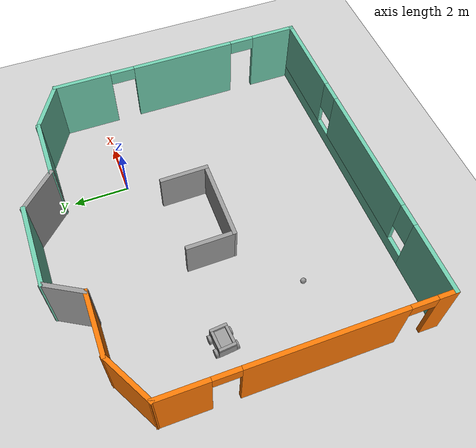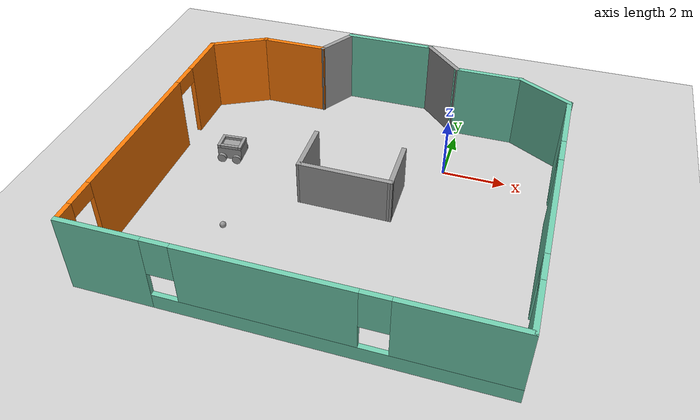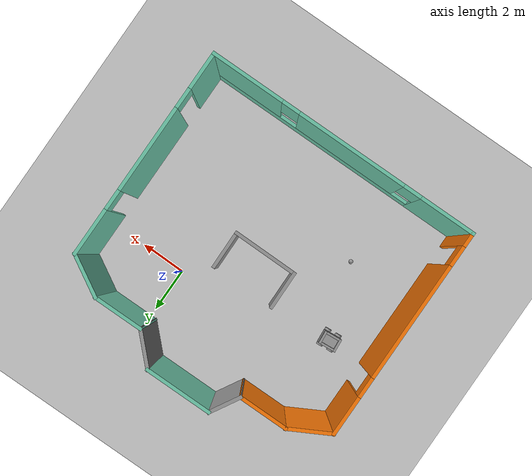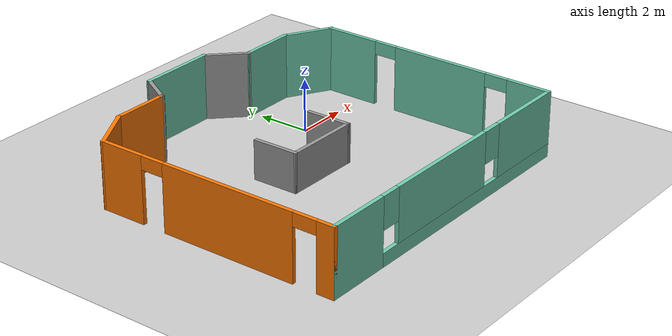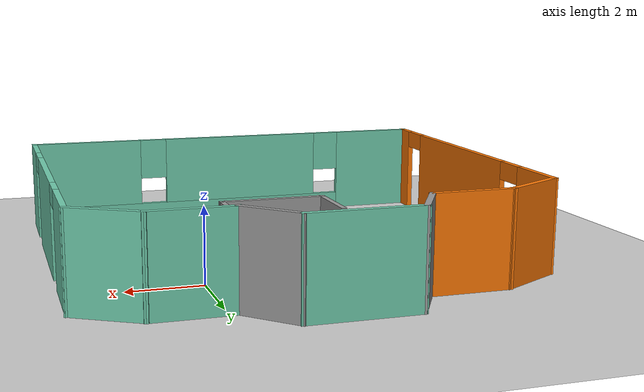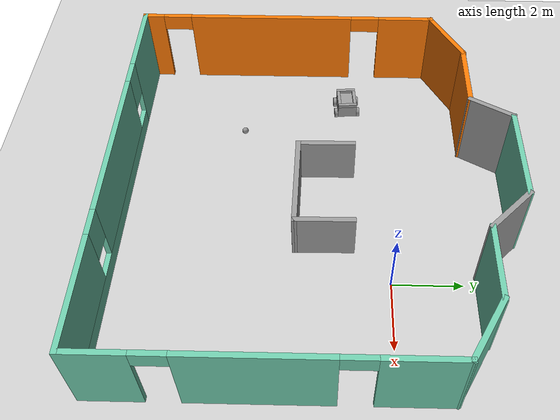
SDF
<sdf version="1.6">
 <world name="default">
  <model name="ground_plane">
   <static>1</static>
   <link name="link">
    <collision name="collision">
     <geometry><plane><normal>0 0 1</normal><size>100 100</size></plane></geometry>
     <surface>
      <contact><collide_bitmask>65535</collide_bitmask></contact>
      <friction><ode><mu>100</mu><mu2>50</mu2></ode></friction>
     </surface>
    </collision>
    <visual name="visual">
     <cast_shadows>0</cast_shadows>
     <geometry><plane><normal>0 0 1</normal><size>100 100</size></plane></geometry>
     <material>
      <script><uri>file://media/materials/scripts/gazebo.material</uri><name>Gazebo/Grey</name></script>
     </material>
    </visual>
   </link>
  </model>
  <model name="ProjectWorld">
   <pose>-2.59282 -2.15331 0 0 -0 0</pose>
   <link name="Wall_0">
    <pose>-6.05041 -1.04372 0 0 0 -1.5708</pose>
    <visual name="Wall_0_Visual_0">
     <pose>-3.86316 0 1.25 0 -0 0</pose>
     <geometry><box><size>1.77369 0.15 2.5</size></box></geometry>
     <material>
      <script><uri>file://media/materials/scripts/gazebo.material</uri><name>Gazebo/Grey</name></script>
      <ambient>0.996078 0.47451 0.0196078 1</ambient>
     </material>
     <meta><layer>0</layer></meta>
    </visual>
    <collision name="Wall_0_Collision_0">
     <geometry><box><size>1.77369 0.15 2.5</size></box></geometry>
     <pose>-3.86316 0 1.25 0 -0 0</pose>
    </collision>
    <visual name="Wall_0_Visual_1">
     <pose>0.544264 0 1.25 0 -0 0</pose>
     <geometry><box><size>5.24116 0.15 2.5</size></box></geometry>
     <material>
      <script><uri>file://media/materials/scripts/gazebo.material</uri><name>Gazebo/Grey</name></script>
      <ambient>0.996078 0.47451 0.0196078 1</ambient>
     </material>
     <meta><layer>0</layer></meta>
    </visual>
    <collision name="Wall_0_Collision_1">
     <geometry><box><size>5.24116 0.15 2.5</size></box></geometry>
     <pose>0.544264 0 1.25 0 -0 0</pose>
    </collision>
    <visual name="Wall_0_Visual_2">
     <pose>4.40742 0 1.25 0 -0 0</pose>
     <geometry><box><size>0.685158 0.15 2.5</size></box></geometry>
     <material>
      <script><uri>file://media/materials/scripts/gazebo.material</uri><name>Gazebo/Grey</name></script>
      <ambient>0.996078 0.47451 0.0196078 1</ambient>
     </material>
     <meta><layer>0</layer></meta>
    </visual>
    <collision name="Wall_0_Collision_2">
     <geometry><box><size>0.685158 0.15 2.5</size></box></geometry>
     <pose>4.40742 0 1.25 0 -0 0</pose>
    </collision>
    <visual name="Wall_0_Visual_3">
     <pose>-2.52631 0 2.25 0 -0 0</pose>
     <geometry><box><size>0.9 0.15 0.5</size></box></geometry>
     <material>
      <script><uri>file://media/materials/scripts/gazebo.material</uri><name>Gazebo/Grey</name></script>
      <ambient>0.996078 0.47451 0.0196078 1</ambient>
     </material>
     <meta><layer>0</layer></meta>
    </visual>
    <collision name="Wall_0_Collision_3">
     <geometry><box><size>0.9 0.15 0.5</size></box></geometry>
     <pose>-2.52631 0 2.25 0 -0 0</pose>
    </collision>
    <visual name="Wall_0_Visual_4">
     <pose>3.61484 0 2.25 0 -0 0</pose>
     <geometry><box><size>0.9 0.15 0.5</size></box></geometry>
     <material>
      <script><uri>file://media/materials/scripts/gazebo.material</uri><name>Gazebo/Grey</name></script>
      <ambient>0.996078 0.47451 0.0196078 1</ambient>
     </material>
     <meta><layer>0</layer></meta>
    </visual>
    <collision name="Wall_0_Collision_4">
     <geometry><box><size>0.9 0.15 0.5</size></box></geometry>
     <pose>3.61484 0 2.25 0 -0 0</pose>
    </collision>
   </link>
   <link name="Wall_1">
    <pose>-0.000406 -5.71872 0 0 -0 0</pose>
    <visual name="Wall_1_Visual_0">
     <pose>-4.8799 0 1.25 0 -0 0</pose>
     <geometry><box><size>2.49021 0.15 2.5</size></box></geometry>
     <material>
      <script><uri>file://media/materials/scripts/gazebo.material</uri><name>Gazebo/Grey</name></script>
      <ambient>0.435294 0.796078 0.67451 1</ambient>
     </material>
     <meta><layer>0</layer></meta>
    </visual>
    <collision name="Wall_1_Collision_0">
     <geometry><box><size>2.49021 0.15 2.5</size></box></geometry>
     <pose>-4.8799 0 1.25 0 -0 0</pose>
    </collision>
    <visual name="Wall_1_Visual_1">
     <pose>1.2451 0 0.25 0 -0 0</pose>
     <geometry><box><size>9.75979 0.15 0.5</size></box></geometry>
     <material>
      <script><uri>file://media/materials/scripts/gazebo.material</uri><name>Gazebo/Grey</name></script>
      <ambient>0.435294 0.796078 0.67451 1</ambient>
     </material>
     <meta><layer>0</layer></meta>
    </visual>
    <collision name="Wall_1_Collision_1">
     <geometry><box><size>9.75979 0.15 0.5</size></box></geometry>
     <pose>1.2451 0 0.25 0 -0 0</pose>
    </collision>
    <visual name="Wall_1_Visual_2">
     <pose>-0.396833 0 1.5 0 -0 0</pose>
     <geometry><box><size>4.87592 0.15 2</size></box></geometry>
     <material>
      <script><uri>file://media/materials/scripts/gazebo.material</uri><name>Gazebo/Grey</name></script>
      <ambient>0.435294 0.796078 0.67451 1</ambient>
     </material>
     <meta><layer>0</layer></meta>
    </visual>
    <collision name="Wall_1_Collision_2">
     <geometry><box><size>4.87592 0.15 2</size></box></geometry>
     <pose>-0.396833 0 1.5 0 -0 0</pose>
    </collision>
    <visual name="Wall_1_Visual_3">
     <pose>4.48306 0 1.5 0 -0 0</pose>
     <geometry><box><size>3.28387 0.15 2</size></box></geometry>
     <material>
      <script><uri>file://media/materials/scripts/gazebo.material</uri><name>Gazebo/Grey</name></script>
      <ambient>0.435294 0.796078 0.67451 1</ambient>
     </material>
     <meta><layer>0</layer></meta>
    </visual>
    <collision name="Wall_1_Collision_3">
     <geometry><box><size>3.28387 0.15 2</size></box></geometry>
     <pose>4.48306 0 1.5 0 -0 0</pose>
    </collision>
    <visual name="Wall_1_Visual_4">
     <pose>-3.23479 0 1.9 0 -0 0</pose>
     <geometry><box><size>0.8 0.15 1.2</size></box></geometry>
     <material>
      <script><uri>file://media/materials/scripts/gazebo.material</uri><name>Gazebo/Grey</name></script>
      <ambient>0.435294 0.796078 0.67451 1</ambient>
     </material>
     <meta><layer>0</layer></meta>
    </visual>
    <collision name="Wall_1_Collision_4">
     <geometry><box><size>0.8 0.15 1.2</size></box></geometry>
     <pose>-3.23479 0 1.9 0 -0 0</pose>
    </collision>
    <visual name="Wall_1_Visual_5">
     <pose>2.44113 0 1.9 0 -0 0</pose>
     <geometry><box><size>0.8 0.15 1.2</size></box></geometry>
     <material>
      <script><uri>file://media/materials/scripts/gazebo.material</uri><name>Gazebo/Grey</name></script>
      <ambient>0.435294 0.796078 0.67451 1</ambient>
     </material>
     <meta><layer>0</layer></meta>
    </visual>
    <collision name="Wall_1_Collision_5">
     <geometry><box><size>0.8 0.15 1.2</size></box></geometry>
     <pose>2.44113 0 1.9 0 -0 0</pose>
    </collision>
   </link>
   <link name="Wall_11">
    <collision name="Wall_11_Collision">
     <geometry><box><size>1.78012 0.15 1.5</size></box></geometry>
     <pose>0 0 0.75 0 -0 0</pose>
    </collision>
    <visual name="Wall_11_Visual">
     <pose>0 0 0.75 0 -0 0</pose>
     <geometry><box><size>1.78012 0.15 1.5</size></box></geometry>
     <material>
      <script><uri>file://media/materials/scripts/gazebo.material</uri><name>Gazebo/Grey</name></script>
      <ambient>1 1 1 1</ambient>
     </material>
     <meta><layer>0</layer></meta>
    </visual>
    <pose>-1.37485 0.273748 0 0 0 -1.55853</pose>
   </link>
   <link name="Wall_12">
    <collision name="Wall_12_Collision">
     <geometry><box><size>3.00019 0.15 1.5</size></box></geometry>
     <pose>0 0 0.75 0 -0 0</pose>
    </collision>
    <visual name="Wall_12_Visual">
     <pose>0 0 0.75 0 -0 0</pose>
     <geometry><box><size>3.00019 0.15 1.5</size></box></geometry>
     <material>
      <script><uri>file://media/materials/scripts/gazebo.material</uri><name>Gazebo/Grey</name></script>
      <ambient>1 1 1 1</ambient>
     </material>
     <meta><layer>0</layer></meta>
    </visual>
    <pose>0.060151 -0.551252 0 0 0 -0.007017</pose>
   </link>
   <link name="Wall_13">
    <collision name="Wall_13_Collision">
     <geometry><box><size>1.78012 0.15 1.5</size></box></geometry>
     <pose>0 0 0.75 0 -0 0</pose>
    </collision>
    <visual name="Wall_13_Visual">
     <pose>0 0 0.75 0 -0 0</pose>
     <geometry><box><size>1.78012 0.15 1.5</size></box></geometry>
     <material>
      <script><uri>file://media/materials/scripts/gazebo.material</uri><name>Gazebo/Grey</name></script>
      <ambient>1 1 1 1</ambient>
     </material>
     <meta><layer>0</layer></meta>
    </visual>
    <pose>1.47515 0.253748 0 0 -0 1.58307</pose>
   </link>
   <link name="Wall_2">
    <pose>6.04959 -1.04372 0 0 -0 1.5708</pose>
    <visual name="Wall_2_Visual_0">
     <pose>-3.89566 0 1.25 0 -0 0</pose>
     <geometry><box><size>1.70868 0.15 2.5</size></box></geometry>
     <material>
      <script><uri>file://media/materials/scripts/gazebo.material</uri><name>Gazebo/Grey</name></script>
      <ambient>0.435294 0.796078 0.67451 1</ambient>
     </material>
     <meta><layer>0</layer></meta>
    </visual>
    <collision name="Wall_2_Collision_0">
     <geometry><box><size>1.70868 0.15 2.5</size></box></geometry>
     <pose>-3.89566 0 1.25 0 -0 0</pose>
    </collision>
    <visual name="Wall_2_Visual_1">
     <pose>-0.218596 0 1.25 0 -0 0</pose>
     <geometry><box><size>3.84544 0.15 2.5</size></box></geometry>
     <material>
      <script><uri>file://media/materials/scripts/gazebo.material</uri><name>Gazebo/Grey</name></script>
      <ambient>0.435294 0.796078 0.67451 1</ambient>
     </material>
     <meta><layer>0</layer></meta>
    </visual>
    <collision name="Wall_2_Collision_1">
     <geometry><box><size>3.84544 0.15 2.5</size></box></geometry>
     <pose>-0.218596 0 1.25 0 -0 0</pose>
    </collision>
    <visual name="Wall_2_Visual_2">
     <pose>3.67706 0 1.25 0 -0 0</pose>
     <geometry><box><size>2.14588 0.15 2.5</size></box></geometry>
     <material>
      <script><uri>file://media/materials/scripts/gazebo.material</uri><name>Gazebo/Grey</name></script>
      <ambient>0.435294 0.796078 0.67451 1</ambient>
     </material>
     <meta><layer>0</layer></meta>
    </visual>
    <collision name="Wall_2_Collision_2">
     <geometry><box><size>2.14588 0.15 2.5</size></box></geometry>
     <pose>3.67706 0 1.25 0 -0 0</pose>
    </collision>
    <visual name="Wall_2_Visual_3">
     <pose>-2.59132 0 2.25 0 -0 0</pose>
     <geometry><box><size>0.9 0.15 0.5</size></box></geometry>
     <material>
      <script><uri>file://media/materials/scripts/gazebo.material</uri><name>Gazebo/Grey</name></script>
      <ambient>0.435294 0.796078 0.67451 1</ambient>
     </material>
     <meta><layer>0</layer></meta>
    </visual>
    <collision name="Wall_2_Collision_3">
     <geometry><box><size>0.9 0.15 0.5</size></box></geometry>
     <pose>-2.59132 0 2.25 0 -0 0</pose>
    </collision>
    <visual name="Wall_2_Visual_4">
     <pose>2.15412 0 2.25 0 -0 0</pose>
     <geometry><box><size>0.9 0.15 0.5</size></box></geometry>
     <material>
      <script><uri>file://media/materials/scripts/gazebo.material</uri><name>Gazebo/Grey</name></script>
      <ambient>0.435294 0.796078 0.67451 1</ambient>
     </material>
     <meta><layer>0</layer></meta>
    </visual>
    <collision name="Wall_2_Collision_4">
     <geometry><box><size>0.9 0.15 0.5</size></box></geometry>
     <pose>2.15412 0 2.25 0 -0 0</pose>
    </collision>
   </link>
   <link name="Wall_3">
    <collision name="Wall_3_Collision">
     <geometry><box><size>2 0.15 2.5</size></box></geometry>
     <pose>0 0 1.25 0 -0 0</pose>
    </collision>
    <visual name="Wall_3_Visual">
     <pose>0 0 1.25 0 -0 0</pose>
     <geometry><box><size>2 0.15 2.5</size></box></geometry>
     <material>
      <script><uri>file://media/materials/scripts/gazebo.material</uri><name>Gazebo/Grey</name></script>
      <ambient>0.435294 0.796078 0.67451 1</ambient>
     </material>
     <meta><layer>0</layer></meta>
    </visual>
    <pose>5.24852 4.09378 0 0 -0 2.61799</pose>
   </link>
   <link name="Wall_4">
    <collision name="Wall_4_Collision">
     <geometry><box><size>2.25 0.15 2.5</size></box></geometry>
     <pose>0 0 1.25 0 -0 0</pose>
    </collision>
    <visual name="Wall_4_Visual">
     <pose>0 0 1.25 0 -0 0</pose>
     <geometry><box><size>2.25 0.15 2.5</size></box></geometry>
     <material>
      <script><uri>file://media/materials/scripts/gazebo.material</uri><name>Gazebo/Grey</name></script>
      <ambient>0.435294 0.796078 0.67451 1</ambient>
     </material>
     <meta><layer>0</layer></meta>
    </visual>
    <pose>3.39745 4.55628 0 0 -0 3.14159</pose>
   </link>
   <link name="Wall_5">
    <collision name="Wall_5_Collision">
     <geometry><box><size>1.75 0.15 2.5</size></box></geometry>
     <pose>0 0 1.25 0 -0 0</pose>
    </collision>
    <visual name="Wall_5_Visual">
     <pose>0 0 1.25 0 -0 0</pose>
     <geometry><box><size>1.75 0.15 2.5</size></box></geometry>
     <material>
      <script><uri>file://media/materials/scripts/gazebo.material</uri><name>Gazebo/Grey</name></script>
      <ambient>1 1 1 1</ambient>
     </material>
     <meta><layer>0</layer></meta>
    </visual>
    <pose>1.78176 5.12197 0 0 -0 2.35619</pose>
   </link>
   <link name="Wall_6">
    <collision name="Wall_6_Collision">
     <geometry><box><size>3 0.15 2.5</size></box></geometry>
     <pose>0 0 1.25 0 -0 0</pose>
    </collision>
    <visual name="Wall_6_Visual">
     <pose>0 0 1.25 0 -0 0</pose>
     <geometry><box><size>3 0.15 2.5</size></box></geometry>
     <material>
      <script><uri>file://media/materials/scripts/gazebo.material</uri><name>Gazebo/Grey</name></script>
      <ambient>0.435294 0.796078 0.67451 1</ambient>
     </material>
     <meta><layer>0</layer></meta>
    </visual>
    <pose>-0.208923 5.68765 0 0 -0 3.14159</pose>
   </link>
   <link name="Wall_7">
    <collision name="Wall_7_Collision">
     <geometry><box><size>1.5 0.15 2.5</size></box></geometry>
     <pose>0 0 1.25 0 -0 0</pose>
    </collision>
    <visual name="Wall_7_Visual">
     <pose>0 0 1.25 0 -0 0</pose>
     <geometry><box><size>1.5 0.15 2.5</size></box></geometry>
     <material>
      <script><uri>file://media/materials/scripts/gazebo.material</uri><name>Gazebo/Grey</name></script>
      <ambient>1 1 1 1</ambient>
     </material>
     <meta><layer>0</layer></meta>
    </visual>
    <pose>-1.97142 5.10309 0 0 0 -2.0944</pose>
   </link>
   <link name="Wall_8">
    <collision name="Wall_8_Collision">
     <geometry><box><size>2.25 0.15 2.5</size></box></geometry>
     <pose>0 0 1.25 0 -0 0</pose>
    </collision>
    <visual name="Wall_8_Visual">
     <pose>0 0 1.25 0 -0 0</pose>
     <geometry><box><size>2.25 0.15 2.5</size></box></geometry>
     <material>
      <script><uri>file://media/materials/scripts/gazebo.material</uri><name>Gazebo/Grey</name></script>
      <ambient>0.996078 0.47451 0.0196078 1</ambient>
     </material>
     <meta><layer>0</layer></meta>
    </visual>
    <pose>-3.35892 4.51852 0 0 -0 3.14159</pose>
   </link>
   <link name="Wall_9">
    <collision name="Wall_9_Collision">
     <geometry><box><size>2.01592 0.15 2.5</size></box></geometry>
     <pose>0 0 1.25 0 -0 0</pose>
    </collision>
    <visual name="Wall_9_Visual">
     <pose>0 0 1.25 0 -0 0</pose>
     <geometry><box><size>2.01592 0.15 2.5</size></box></geometry>
     <material>
      <script><uri>file://media/materials/scripts/gazebo.material</uri><name>Gazebo/Grey</name></script>
      <ambient>0.996078 0.47451 0.0196078 1</ambient>
     </material>
     <meta><layer>0</layer></meta>
    </visual>
    <pose>-5.22966 4.0749 0 0 0 -2.64607</pose>
   </link>
   <static>1</static>
  </model>
  <model name="Robot_clone_0">
   <link name="link_0">
    <pose>0 0.002102 -0.044444 0 -0 0</pose>
    <inertial>
     <mass>1</mass>
     <inertia>
      <ixx>0.166667</ixx>
      <ixy>0</ixy>
      <ixz>0</ixz>
      <iyy>0.166667</iyy>
      <iyz>0</iyz>
      <izz>0.166667</izz>
     </inertia>
    </inertial>
    <visual name="visual">
     <geometry><box><size>0.8 0.6 0.4</size></box></geometry>
     <material>
      <lighting>1</lighting>
      <script><uri>file://media/materials/scripts/gazebo.material</uri><name>Gazebo/Grey</name></script>
      <shader type="pixel"><normal_map>__default__</normal_map></shader>
      <ambient>0.3 0.3 0.3 1</ambient>
      <diffuse>0.7 0.7 0.7 1</diffuse>
      <specular>0.01 0.01 0.01 1</specular>
      <emissive>0 0 0 1</emissive>
     </material>
    </visual>
    <collision name="collision">
     <geometry><box><size>0.8 0.6 0.4</size></box></geometry>
     <surface>
      <friction>
       <ode><mu>1</mu><mu2>1</mu2><fdir1>0 0 0</fdir1><slip1>0</slip1><slip2>0</slip2></ode>
       <torsional>
        <coefficient>1</coefficient>
        <patch_radius>0</patch_radius>
        <surface_radius>0</surface_radius>
        <use_patch_radius>1</use_patch_radius>
        <ode><slip>0</slip></ode>
       </torsional>
      </friction>
      <bounce><restitution_coefficient>0</restitution_coefficient><threshold>1e+06</threshold></bounce>
      <contact>
       <collide_without_contact>0</collide_without_contact>
       <collide_without_contact_bitmask>1</collide_without_contact_bitmask>
       <collide_bitmask>1</collide_bitmask>
       <ode>
        <soft_cfm>0</soft_cfm>
        <soft_erp>0.2</soft_erp>
        <kp>1e+13</kp>
        <kd>1</kd>
        <max_vel>0.01</max_vel>
        <min_depth>0</min_depth>
       </ode>
       <bullet>
        <split_impulse>1</split_impulse>
        <split_impulse_penetration_threshold>-0.01</split_impulse_penetration_threshold>
        <soft_cfm>0</soft_cfm>
        <soft_erp>0.2</soft_erp>
        <kp>1e+13</kp>
        <kd>1</kd>
       </bullet>
      </contact>
     </surface>
    </collision>
   </link>
   <link name="link_1">
    <pose>0 -0.247898 0.205556 0 -0 0</pose>
    <inertial>
     <mass>1</mass>
     <inertia>
      <ixx>0.166667</ixx>
      <ixy>0</ixy>
      <ixz>0</ixz>
      <iyy>0.166667</iyy>
      <iyz>0</iyz>
      <izz>0.166667</izz>
     </inertia>
    </inertial>
    <visual name="visual">
     <geometry><box><size>0.6 0.1 0.1</size></box></geometry>
     <material>
      <lighting>1</lighting>
      <script><uri>file://media/materials/scripts/gazebo.material</uri><name>Gazebo/Grey</name></script>
      <shader type="pixel"><normal_map>__default__</normal_map></shader>
      <ambient>0.3 0.3 0.3 1</ambient>
      <diffuse>0.7 0.7 0.7 1</diffuse>
      <specular>0.01 0.01 0.01 1</specular>
      <emissive>0 0 0 1</emissive>
     </material>
    </visual>
    <collision name="collision">
     <geometry><box><size>0.6 0.1 0.1</size></box></geometry>
     <surface>
      <friction>
       <ode><mu>1</mu><mu2>1</mu2><fdir1>0 0 0</fdir1><slip1>0</slip1><slip2>0</slip2></ode>
       <torsional>
        <coefficient>1</coefficient>
        <patch_radius>0</patch_radius>
        <surface_radius>0</surface_radius>
        <use_patch_radius>1</use_patch_radius>
        <ode><slip>0</slip></ode>
       </torsional>
      </friction>
      <bounce><restitution_coefficient>0</restitution_coefficient><threshold>1e+06</threshold></bounce>
      <contact>
       <collide_without_contact>0</collide_without_contact>
       <collide_without_contact_bitmask>1</collide_without_contact_bitmask>
       <collide_bitmask>1</collide_bitmask>
       <ode>
        <soft_cfm>0</soft_cfm>
        <soft_erp>0.2</soft_erp>
        <kp>1e+13</kp>
        <kd>1</kd>
        <max_vel>0.01</max_vel>
        <min_depth>0</min_depth>
       </ode>
       <bullet>
        <split_impulse>1</split_impulse>
        <split_impulse_penetration_threshold>-0.01</split_impulse_penetration_threshold>
        <soft_cfm>0</soft_cfm>
        <soft_erp>0.2</soft_erp>
        <kp>1e+13</kp>
        <kd>1</kd>
       </bullet>
      </contact>
     </surface>
    </collision>
   </link>
   <link name="link_1_clone">
    <pose>0 0.252102 0.205556 0 -0 0</pose>
    <inertial>
     <mass>1</mass>
     <inertia>
      <ixx>0.166667</ixx>
      <ixy>0</ixy>
      <ixz>0</ixz>
      <iyy>0.166667</iyy>
      <iyz>0</iyz>
      <izz>0.166667</izz>
     </inertia>
    </inertial>
    <visual name="visual">
     <geometry><box><size>0.6 0.1 0.1</size></box></geometry>
     <material>
      <lighting>1</lighting>
      <script><uri>file://media/materials/scripts/gazebo.material</uri><name>Gazebo/Grey</name></script>
      <shader type="pixel"><normal_map>__default__</normal_map></shader>
      <ambient>0.3 0.3 0.3 1</ambient>
      <diffuse>0.7 0.7 0.7 1</diffuse>
      <specular>0.01 0.01 0.01 1</specular>
      <emissive>0 0 0 1</emissive>
     </material>
    </visual>
    <collision name="collision">
     <geometry><box><size>0.6 0.1 0.1</size></box></geometry>
     <surface>
      <friction>
       <ode><mu>1</mu><mu2>1</mu2><fdir1>0 0 0</fdir1><slip1>0</slip1><slip2>0</slip2></ode>
       <torsional>
        <coefficient>1</coefficient>
        <patch_radius>0</patch_radius>
        <surface_radius>0</surface_radius>
        <use_patch_radius>1</use_patch_radius>
        <ode><slip>0</slip></ode>
       </torsional>
      </friction>
      <bounce><restitution_coefficient>0</restitution_coefficient><threshold>1e+06</threshold></bounce>
      <contact>
       <collide_without_contact>0</collide_without_contact>
       <collide_without_contact_bitmask>1</collide_without_contact_bitmask>
       <collide_bitmask>1</collide_bitmask>
       <ode>
        <soft_cfm>0</soft_cfm>
        <soft_erp>0.2</soft_erp>
        <kp>1e+13</kp>
        <kd>1</kd>
        <max_vel>0.01</max_vel>
        <min_depth>0</min_depth>
       </ode>
       <bullet>
        <split_impulse>1</split_impulse>
        <split_impulse_penetration_threshold>-0.01</split_impulse_penetration_threshold>
        <soft_cfm>0</soft_cfm>
        <soft_erp>0.2</soft_erp>
        <kp>1e+13</kp>
        <kd>1</kd>
       </bullet>
      </contact>
     </surface>
    </collision>
   </link>
   <link name="link_2">
    <pose>-0.35 0.002102 0.205556 0 -0 0</pose>
    <inertial>
     <mass>1</mass>
     <inertia>
      <ixx>0.166667</ixx>
      <ixy>0</ixy>
      <ixz>0</ixz>
      <iyy>0.166667</iyy>
      <iyz>0</iyz>
      <izz>0.166667</izz>
     </inertia>
    </inertial>
    <visual name="visual">
     <geometry><box><size>0.1 0.6 0.1</size></box></geometry>
     <material>
      <lighting>1</lighting>
      <script><uri>file://media/materials/scripts/gazebo.material</uri><name>Gazebo/Grey</name></script>
      <shader type="pixel"><normal_map>__default__</normal_map></shader>
      <ambient>0.3 0.3 0.3 1</ambient>
      <diffuse>0.7 0.7 0.7 1</diffuse>
      <specular>0.01 0.01 0.01 1</specular>
      <emissive>0 0 0 1</emissive>
     </material>
    </visual>
    <collision name="collision">
     <geometry><box><size>0.1 0.6 0.1</size></box></geometry>
     <surface>
      <friction>
       <ode><mu>1</mu><mu2>1</mu2><fdir1>0 0 0</fdir1><slip1>0</slip1><slip2>0</slip2></ode>
       <torsional>
        <coefficient>1</coefficient>
        <patch_radius>0</patch_radius>
        <surface_radius>0</surface_radius>
        <use_patch_radius>1</use_patch_radius>
        <ode><slip>0</slip></ode>
       </torsional>
      </friction>
      <bounce><restitution_coefficient>0</restitution_coefficient><threshold>1e+06</threshold></bounce>
      <contact>
       <collide_without_contact>0</collide_without_contact>
       <collide_without_contact_bitmask>1</collide_without_contact_bitmask>
       <collide_bitmask>1</collide_bitmask>
       <ode>
        <soft_cfm>0</soft_cfm>
        <soft_erp>0.2</soft_erp>
        <kp>1e+13</kp>
        <kd>1</kd>
        <max_vel>0.01</max_vel>
        <min_depth>0</min_depth>
       </ode>
       <bullet>
        <split_impulse>1</split_impulse>
        <split_impulse_penetration_threshold>-0.01</split_impulse_penetration_threshold>
        <soft_cfm>0</soft_cfm>
        <soft_erp>0.2</soft_erp>
        <kp>1e+13</kp>
        <kd>1</kd>
       </bullet>
      </contact>
     </surface>
    </collision>
   </link>
   <link name="link_2_clone">
    <pose>0.35 0.002102 0.205556 0 -0 0</pose>
    <inertial>
     <mass>1</mass>
     <inertia>
      <ixx>0.166667</ixx>
      <ixy>0</ixy>
      <ixz>0</ixz>
      <iyy>0.166667</iyy>
      <iyz>0</iyz>
      <izz>0.166667</izz>
     </inertia>
    </inertial>
    <visual name="visual">
     <geometry><box><size>0.1 0.6 0.1</size></box></geometry>
     <material>
      <lighting>1</lighting>
      <script><uri>file://media/materials/scripts/gazebo.material</uri><name>Gazebo/Grey</name></script>
      <shader type="pixel"><normal_map>__default__</normal_map></shader>
      <ambient>0.3 0.3 0.3 1</ambient>
      <diffuse>0.7 0.7 0.7 1</diffuse>
      <specular>0.01 0.01 0.01 1</specular>
      <emissive>0 0 0 1</emissive>
     </material>
    </visual>
    <collision name="collision">
     <geometry><box><size>0.1 0.6 0.1</size></box></geometry>
     <surface>
      <friction>
       <ode><mu>1</mu><mu2>1</mu2><fdir1>0 0 0</fdir1><slip1>0</slip1><slip2>0</slip2></ode>
       <torsional>
        <coefficient>1</coefficient>
        <patch_radius>0</patch_radius>
        <surface_radius>0</surface_radius>
        <use_patch_radius>1</use_patch_radius>
        <ode><slip>0</slip></ode>
       </torsional>
      </friction>
      <bounce><restitution_coefficient>0</restitution_coefficient><threshold>1e+06</threshold></bounce>
      <contact>
       <collide_without_contact>0</collide_without_contact>
       <collide_without_contact_bitmask>1</collide_without_contact_bitmask>
       <collide_bitmask>1</collide_bitmask>
       <ode>
        <soft_cfm>0</soft_cfm>
        <soft_erp>0.2</soft_erp>
        <kp>1e+13</kp>
        <kd>1</kd>
        <max_vel>0.01</max_vel>
        <min_depth>0</min_depth>
       </ode>
       <bullet>
        <split_impulse>1</split_impulse>
        <split_impulse_penetration_threshold>-0.01</split_impulse_penetration_threshold>
        <soft_cfm>0</soft_cfm>
        <soft_erp>0.2</soft_erp>
        <kp>1e+13</kp>
        <kd>1</kd>
       </bullet>
      </contact>
     </surface>
    </collision>
   </link>
   <link name="link_3">
    <pose>-0.25 -0.357359 -0.194444 1.5708 -0 0</pose>
    <inertial>
     <mass>1</mass>
     <inertia><ixx>0.145833</ixx><ixy>0</ixy><ixz>0</ixz><iyy>0.145833</iyy><iyz>0</iyz><izz>0.125</izz></inertia>
    </inertial>
    <visual name="visual">
     <geometry><cylinder><radius>0.15</radius><length>0.1</length></cylinder></geometry>
     <material>
      <lighting>1</lighting>
      <script><uri>file://media/materials/scripts/gazebo.material</uri><name>Gazebo/Grey</name></script>
      <shader type="pixel"><normal_map>__default__</normal_map></shader>
      <ambient>0.3 0.3 0.3 1</ambient>
      <diffuse>0.7 0.7 0.7 1</diffuse>
      <specular>0.01 0.01 0.01 1</specular>
      <emissive>0 0 0 1</emissive>
     </material>
    </visual>
    <collision name="collision">
     <geometry><cylinder><radius>0.15</radius><length>0.1</length></cylinder></geometry>
     <surface>
      <friction>
       <ode><mu>1</mu><mu2>1</mu2><fdir1>0 0 0</fdir1><slip1>0</slip1><slip2>0</slip2></ode>
       <torsional>
        <coefficient>1</coefficient>
        <patch_radius>0</patch_radius>
        <surface_radius>0</surface_radius>
        <use_patch_radius>1</use_patch_radius>
        <ode><slip>0</slip></ode>
       </torsional>
      </friction>
      <bounce><restitution_coefficient>0</restitution_coefficient><threshold>1e+06</threshold></bounce>
      <contact>
       <collide_without_contact>0</collide_without_contact>
       <collide_without_contact_bitmask>1</collide_without_contact_bitmask>
       <collide_bitmask>1</collide_bitmask>
       <ode>
        <soft_cfm>0</soft_cfm>
        <soft_erp>0.2</soft_erp>
        <kp>1e+13</kp>
        <kd>1</kd>
        <max_vel>0.01</max_vel>
        <min_depth>0</min_depth>
       </ode>
       <bullet>
        <split_impulse>1</split_impulse>
        <split_impulse_penetration_threshold>-0.01</split_impulse_penetration_threshold>
        <soft_cfm>0</soft_cfm>
        <soft_erp>0.2</soft_erp>
        <kp>1e+13</kp>
        <kd>1</kd>
       </bullet>
      </contact>
     </surface>
    </collision>
   </link>
   <link name="link_3_clone">
    <pose>0.25 -0.357359 -0.194444 1.5708 -0 0</pose>
    <inertial>
     <mass>1</mass>
     <inertia><ixx>0.145833</ixx><ixy>0</ixy><ixz>0</ixz><iyy>0.145833</iyy><iyz>0</iyz><izz>0.125</izz></inertia>
    </inertial>
    <visual name="visual">
     <geometry><cylinder><radius>0.15</radius><length>0.1</length></cylinder></geometry>
     <material>
      <lighting>1</lighting>
      <script><uri>file://media/materials/scripts/gazebo.material</uri><name>Gazebo/Grey</name></script>
      <shader type="pixel"><normal_map>__default__</normal_map></shader>
      <ambient>0.3 0.3 0.3 1</ambient>
      <diffuse>0.7 0.7 0.7 1</diffuse>
      <specular>0.01 0.01 0.01 1</specular>
      <emissive>0 0 0 1</emissive>
     </material>
    </visual>
    <collision name="collision">
     <geometry><cylinder><radius>0.15</radius><length>0.1</length></cylinder></geometry>
     <surface>
      <friction>
       <ode><mu>1</mu><mu2>1</mu2><fdir1>0 0 0</fdir1><slip1>0</slip1><slip2>0</slip2></ode>
       <torsional>
        <coefficient>1</coefficient>
        <patch_radius>0</patch_radius>
        <surface_radius>0</surface_radius>
        <use_patch_radius>1</use_patch_radius>
        <ode><slip>0</slip></ode>
       </torsional>
      </friction>
      <bounce><restitution_coefficient>0</restitution_coefficient><threshold>1e+06</threshold></bounce>
      <contact>
       <collide_without_contact>0</collide_without_contact>
       <collide_without_contact_bitmask>1</collide_without_contact_bitmask>
       <collide_bitmask>1</collide_bitmask>
       <ode>
        <soft_cfm>0</soft_cfm>
        <soft_erp>0.2</soft_erp>
        <kp>1e+13</kp>
        <kd>1</kd>
        <max_vel>0.01</max_vel>
        <min_depth>0</min_depth>
       </ode>
       <bullet>
        <split_impulse>1</split_impulse>
        <split_impulse_penetration_threshold>-0.01</split_impulse_penetration_threshold>
        <soft_cfm>0</soft_cfm>
        <soft_erp>0.2</soft_erp>
        <kp>1e+13</kp>
        <kd>1</kd>
       </bullet>
      </contact>
     </surface>
    </collision>
   </link>
   <link name="link_3_clone_0">
    <pose>0.25 0.352103 -0.194444 1.5708 -0 0</pose>
    <inertial>
     <mass>1</mass>
     <inertia><ixx>0.145833</ixx><ixy>0</ixy><ixz>0</ixz><iyy>0.145833</iyy><iyz>0</iyz><izz>0.125</izz></inertia>
    </inertial>
    <visual name="visual">
     <geometry><cylinder><radius>0.15</radius><length>0.1</length></cylinder></geometry>
     <material>
      <lighting>1</lighting>
      <script><uri>file://media/materials/scripts/gazebo.material</uri><name>Gazebo/Grey</name></script>
      <shader type="pixel"><normal_map>__default__</normal_map></shader>
      <ambient>0.3 0.3 0.3 1</ambient>
      <diffuse>0.7 0.7 0.7 1</diffuse>
      <specular>0.01 0.01 0.01 1</specular>
      <emissive>0 0 0 1</emissive>
     </material>
    </visual>
    <collision name="collision">
     <geometry><cylinder><radius>0.15</radius><length>0.1</length></cylinder></geometry>
     <surface>
      <friction>
       <ode><mu>1</mu><mu2>1</mu2><fdir1>0 0 0</fdir1><slip1>0</slip1><slip2>0</slip2></ode>
       <torsional>
        <coefficient>1</coefficient>
        <patch_radius>0</patch_radius>
        <surface_radius>0</surface_radius>
        <use_patch_radius>1</use_patch_radius>
        <ode><slip>0</slip></ode>
       </torsional>
      </friction>
      <bounce><restitution_coefficient>0</restitution_coefficient><threshold>1e+06</threshold></bounce>
      <contact>
       <collide_without_contact>0</collide_without_contact>
       <collide_without_contact_bitmask>1</collide_without_contact_bitmask>
       <collide_bitmask>1</collide_bitmask>
       <ode>
        <soft_cfm>0</soft_cfm>
        <soft_erp>0.2</soft_erp>
        <kp>1e+13</kp>
        <kd>1</kd>
        <max_vel>0.01</max_vel>
        <min_depth>0</min_depth>
       </ode>
       <bullet>
        <split_impulse>1</split_impulse>
        <split_impulse_penetration_threshold>-0.01</split_impulse_penetration_threshold>
        <soft_cfm>0</soft_cfm>
        <soft_erp>0.2</soft_erp>
        <kp>1e+13</kp>
        <kd>1</kd>
       </bullet>
      </contact>
     </surface>
    </collision>
   </link>
   <link name="link_3_clone_1">
    <pose>-0.25 0.352103 -0.194444 1.5708 -0 0</pose>
    <inertial>
     <mass>1</mass>
     <inertia><ixx>0.145833</ixx><ixy>0</ixy><ixz>0</ixz><iyy>0.145833</iyy><iyz>0</iyz><izz>0.125</izz></inertia>
    </inertial>
    <visual name="visual">
     <geometry><cylinder><radius>0.15</radius><length>0.1</length></cylinder></geometry>
     <material>
      <lighting>1</lighting>
      <script><uri>file://media/materials/scripts/gazebo.material</uri><name>Gazebo/Grey</name></script>
      <shader type="pixel"><normal_map>__default__</normal_map></shader>
      <ambient>0.3 0.3 0.3 1</ambient>
      <diffuse>0.7 0.7 0.7 1</diffuse>
      <specular>0.01 0.01 0.01 1</specular>
      <emissive>0 0 0 1</emissive>
     </material>
    </visual>
    <collision name="collision">
     <geometry><cylinder><radius>0.15</radius><length>0.1</length></cylinder></geometry>
     <surface>
      <friction>
       <ode><mu>1</mu><mu2>1</mu2><fdir1>0 0 0</fdir1><slip1>0</slip1><slip2>0</slip2></ode>
       <torsional>
        <coefficient>1</coefficient>
        <patch_radius>0</patch_radius>
        <surface_radius>0</surface_radius>
        <use_patch_radius>1</use_patch_radius>
        <ode><slip>0</slip></ode>
       </torsional>
      </friction>
      <bounce><restitution_coefficient>0</restitution_coefficient><threshold>1e+06</threshold></bounce>
      <contact>
       <collide_without_contact>0</collide_without_contact>
       <collide_without_contact_bitmask>1</collide_without_contact_bitmask>
       <collide_bitmask>1</collide_bitmask>
       <ode>
        <soft_cfm>0</soft_cfm>
        <soft_erp>0.2</soft_erp>
        <kp>1e+13</kp>
        <kd>1</kd>
        <max_vel>0.01</max_vel>
        <min_depth>0</min_depth>
       </ode>
       <bullet>
        <split_impulse>1</split_impulse>
        <split_impulse_penetration_threshold>-0.01</split_impulse_penetration_threshold>
        <soft_cfm>0</soft_cfm>
        <soft_erp>0.2</soft_erp>
        <kp>1e+13</kp>
        <kd>1</kd>
       </bullet>
      </contact>
     </surface>
    </collision>
   </link>
   <joint name="link_0_JOINT_1" type="revolute">
    <parent>link_0</parent>
    <child>link_3</child>
    <axis>
     <xyz>0 0 1</xyz>
     <use_parent_model_frame>0</use_parent_model_frame>
     <limit>
      <lower>-1.79769e+308</lower>
      <upper>1.79769e+308</upper>
      <effort>-1</effort>
      <velocity>-1</velocity>
     </limit>
     <dynamics>
      <spring_reference>0</spring_reference>
      <spring_stiffness>0</spring_stiffness>
      <damping>0</damping>
     </dynamics>
    </axis>
    <physics>
     <ode><limit><cfm>0</cfm><erp>0.2</erp></limit><suspension><cfm>0</cfm><erp>0.2</erp></suspension></ode>
    </physics>
   </joint>
   <joint name="link_0_JOINT_2" type="revolute">
    <parent>link_0</parent>
    <child>link_3_clone</child>
    <axis>
     <xyz>0 0 1</xyz>
     <use_parent_model_frame>0</use_parent_model_frame>
     <limit>
      <lower>-1.79769e+308</lower>
      <upper>1.79769e+308</upper>
      <effort>-1</effort>
      <velocity>-1</velocity>
     </limit>
     <dynamics>
      <spring_reference>0</spring_reference>
      <spring_stiffness>0</spring_stiffness>
      <damping>0</damping>
     </dynamics>
    </axis>
    <physics>
     <ode><limit><cfm>0</cfm><erp>0.2</erp></limit><suspension><cfm>0</cfm><erp>0.2</erp></suspension></ode>
    </physics>
   </joint>
   <joint name="link_0_JOINT_3" type="revolute">
    <parent>link_0</parent>
    <child>link_3_clone_0</child>
    <axis>
     <xyz>0 0 1</xyz>
     <use_parent_model_frame>0</use_parent_model_frame>
     <limit>
      <lower>-1.79769e+308</lower>
      <upper>1.79769e+308</upper>
      <effort>-1</effort>
      <velocity>-1</velocity>
     </limit>
     <dynamics>
      <spring_reference>0</spring_reference>
      <spring_stiffness>0</spring_stiffness>
      <damping>0</damping>
     </dynamics>
    </axis>
    <physics>
     <ode><limit><cfm>0</cfm><erp>0.2</erp></limit><suspension><cfm>0</cfm><erp>0.2</erp></suspension></ode>
    </physics>
   </joint>
   <joint name="link_0_JOINT_4" type="revolute">
    <parent>link_0</parent>
    <child>link_3_clone_1</child>
    <axis>
     <xyz>1 0 0</xyz>
     <use_parent_model_frame>0</use_parent_model_frame>
     <limit>
      <lower>-1.79769e+308</lower>
      <upper>1.79769e+308</upper>
      <effort>-1</effort>
      <velocity>-1</velocity>
     </limit>
     <dynamics>
      <spring_reference>0</spring_reference>
      <spring_stiffness>0</spring_stiffness>
      <damping>0</damping>
     </dynamics>
    </axis>
    <physics>
     <ode><limit><cfm>0</cfm><erp>0.2</erp></limit><suspension><cfm>0</cfm><erp>0.2</erp></suspension></ode>
    </physics>
   </joint>
   <joint name="link_0_JOINT_5" type="fixed">
    <parent>link_0</parent>
    <child>link_2_clone</child>
    <physics>
     <ode><limit><cfm>0</cfm><erp>0.2</erp></limit><suspension><cfm>0</cfm><erp>0.2</erp></suspension></ode>
    </physics>
   </joint>
   <joint name="link_0_JOINT_6" type="fixed">
    <parent>link_0</parent>
    <child>link_2</child>
    <physics>
     <ode><limit><cfm>0</cfm><erp>0.2</erp></limit><suspension><cfm>0</cfm><erp>0.2</erp></suspension></ode>
    </physics>
   </joint>
   <joint name="link_0_JOINT_7" type="fixed">
    <parent>link_0</parent>
    <child>link_1</child>
    <physics>
     <ode><limit><cfm>0</cfm><erp>0.2</erp></limit><suspension><cfm>0</cfm><erp>0.2</erp></suspension></ode>
    </physics>
   </joint>
   <joint name="link_0_JOINT_8" type="fixed">
    <parent>link_0</parent>
    <child>link_1_clone</child>
    <physics>
     <ode><limit><cfm>0</cfm><erp>0.2</erp></limit><suspension><cfm>0</cfm><erp>0.2</erp></suspension></ode>
    </physics>
   </joint>
   <static>0</static>
   <pose>-6.90163 -1.21186 0.344442 -4e-06 -3e-06 0.081596</pose>
  </model>
  <model name="my_ball">
   <link name="link_0">
    <inertial>
     <mass>1</mass>
     <inertia><ixx>0.1</ixx><ixy>0</ixy><ixz>0</ixz><iyy>0.1</iyy><iyz>0</iyz><izz>0.1</izz></inertia>
    </inertial>
    <visual name="visual">
     <geometry><sphere><radius>0.1</radius></sphere></geometry>
     <material>
      <lighting>1</lighting>
      <script><uri>file://media/materials/scripts/gazebo.material</uri><name>Gazebo/Grey</name></script>
      <shader type="vertex"><normal_map>__default__</normal_map></shader>
      <ambient>1 1 1 1</ambient>
      <diffuse>1 1 1 1</diffuse>
      <specular>1 1 1 1</specular>
      <emissive>1 1 1 1</emissive>
     </material>
    </visual>
    <collision name="collision">
     <geometry><sphere><radius>0.1</radius></sphere></geometry>
     <surface>
      <friction>
       <ode><mu>1</mu><mu2>1</mu2><fdir1>0 0 0</fdir1><slip1>0</slip1><slip2>0</slip2></ode>
       <torsional>
        <coefficient>1</coefficient>
        <patch_radius>0</patch_radius>
        <surface_radius>0</surface_radius>
        <use_patch_radius>1</use_patch_radius>
        <ode><slip>0</slip></ode>
       </torsional>
      </friction>
      <bounce><restitution_coefficient>0</restitution_coefficient><threshold>1e+06</threshold></bounce>
      <contact>
       <collide_without_contact>0</collide_without_contact>
       <collide_without_contact_bitmask>1</collide_without_contact_bitmask>
       <collide_bitmask>1</collide_bitmask>
       <ode>
        <soft_cfm>0</soft_cfm>
        <soft_erp>0.2</soft_erp>
        <kp>1e+13</kp>
        <kd>1</kd>
        <max_vel>0.01</max_vel>
        <min_depth>0</min_depth>
       </ode>
       <bullet>
        <split_impulse>1</split_impulse>
        <split_impulse_penetration_threshold>-0.01</split_impulse_penetration_threshold>
        <soft_cfm>0</soft_cfm>
        <soft_erp>0.2</soft_erp>
        <kp>1e+13</kp>
        <kd>1</kd>
       </bullet>
      </contact>
     </surface>
    </collision>
   </link>
   <static>0</static>
   <pose>-5.7671 -4.51778 0.1 0 -0 0</pose>
  </model>
 </world>
</sdf>
